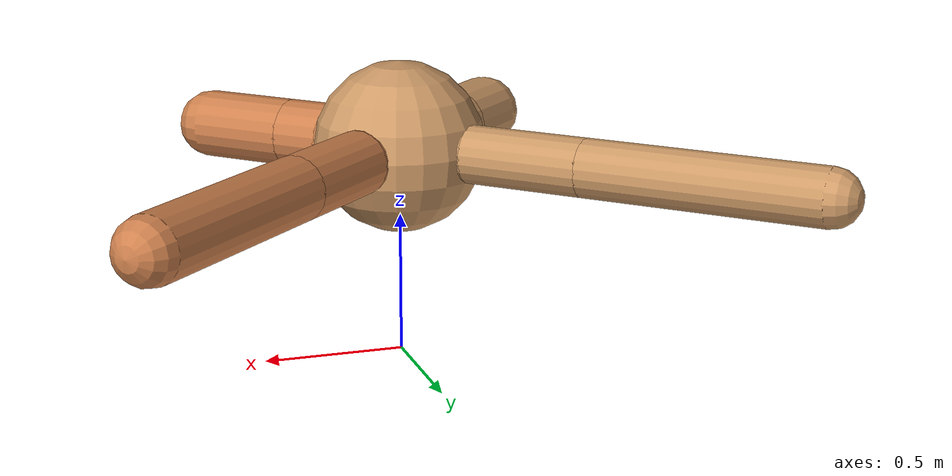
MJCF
<?xml version="1.0" ?>
<mujoco model="ant">

	<compiler angle="degree" coordinate="local" inertiafromgeom="true"/>

	<option integrator="RK4" timestep="0.01"/>

	<custom>

		<numeric data="0.0 0.0 0.55 1.0 0.0 0.0 0.0 0.0 1.0 0.0 -1.0 0.0 -1.0 0.0 1.0" name="init_qpos"/>

	</custom>

	<default>

		<joint armature="1" damping="1" limited="true"/>

		<geom conaffinity="0" condim="3" density="5.0" friction="1.5 0.1 0.1" margin="0.01" rgba="0.8 0.6 0.4 1"/>

	</default>

	<worldbody>

		<body name="torso" pos="0 0 0.75">

			<geom name="torso_geom" pos="0 0 0" size="0.30265412161587" type="sphere"/>

			<!--joint armature="0" damping="0" limited="false" margin="0.01" name="root" pos="0 0 0" type="free"/-->

			<body name="front_left_leg" pos="0 0 0">

				<geom fromto="0 0 0 0.2 0.2 0" name="aux_1_geom" size="0.11176989946032738" type="capsule" rgba=".8 .5 .3 1"/>

				<body name="aux_1" pos="0.2 0.2 0">

					<joint axis="0 0 1" name="hip_1" pos="0.0 0.0 0.0" range="-40 40" type="hinge"/>

					<geom fromto="0 0 0 0.28164297016704903 0.28164297016704903 0" name="left_leg_geom" size="0.11176989946032738" type="capsule" rgba=".8 .5 .3 1"/>

					<body pos="0.28164297016704903 0.28164297016704903 0" name="front_left_foot">

						<joint axis="-1 1 0" name="ankle_1" pos="0.0 0.0 0.0" range="30 100" type="hinge"/>

						<geom fromto="0 0 0 0.5632859403340981 0.5632859403340981 0" name="left_ankle_geom" size="0.11176989946032738" type="capsule" rgba=".8 .5 .3 1"/>

					</body>

				</body>

			</body>

			<body name="front_right_leg" pos="0 0 0">

				<geom fromto="0 0 0 -0.2 0.2 0" name="aux_2_geom" size="0.1024242380358885" type="capsule"/>

				<body name="aux_2" pos="-0.2 0.2 0">

					<joint axis="0 0 1" name="hip_2" pos="0.0 0.0 0.0" range="-40 40" type="hinge"/>

					<geom fromto="0 0 0 -0.3040024222140642 0.3040024222140642 0" name="right_leg_geom" size="0.1024242380358885" type="capsule"/>

					<body pos="-0.3040024222140642 0.3040024222140642 0" name="front_right_foot">

						<joint axis="1 1 0" name="ankle_2" pos="0.0 0.0 0.0" range="-100 -30" type="hinge"/>

						<geom fromto="0 0 0 -0.6080048444281284 0.6080048444281284 0" name="right_ankle_geom" size="0.1024242380358885" type="capsule"/>

					</body>

				</body>

			</body>

			<body name="left_back_leg" pos="0 0 0">

				<geom fromto="0 0 0 -0.2 -0.2 0" name="aux_3_geom" size="0.12873283902988497" type="capsule"/>

				<body name="aux_3" pos="-0.2 -0.2 0">

					<joint axis="0 0 1" name="hip_3" pos="0.0 0.0 0.0" range="-40 40" type="hinge"/>

					<geom fromto="0 0 0 -0.08592197086088345 -0.08592197086088345 0" name="back_leg_geom" size="0.12873283902988497" type="capsule"/>

					<body pos="-0.08592197086088345 -0.08592197086088345 0" name="left_back_foot">

						<joint axis="-1 1 0" name="ankle_3" pos="0.0 0.0 0.0" range="-100 -30" type="hinge"/>

						<geom fromto="0 0 0 -0.1718439417217669 -0.1718439417217669 0" name="third_ankle_geom" size="0.12873283902988497" type="capsule"/>

					</body>

				</body>

			</body>

			<body name="right_back_leg" pos="0 0 0">

				<geom fromto="0 0 0 0.2 -0.2 0" name="aux_4_geom" size="0.12132779196948824" type="capsule" rgba=".8 .5 .3 1"/>

				<body name="aux_4" pos="0.2 -0.2 0">

					<joint axis="0 0 1" name="hip_4" pos="0.0 0.0 0.0" range="-40 40" type="hinge"/>

					<geom fromto="0 0 0 0.11920751273970864 -0.11920751273970864 0" name="rightback_leg_geom" size="0.12132779196948824" type="capsule" rgba=".8 .5 .3 1"/>

					<body pos="0.11920751273970864 -0.11920751273970864 0" name="right_back_foot">

						<joint axis="1 1 0" name="ankle_4" pos="0.0 0.0 0.0" range="30 100" type="hinge"/>

						<geom fromto="0 0 0 0.2384150254794173 -0.2384150254794173 0" name="fourth_ankle_geom" size="0.12132779196948824" type="capsule" rgba=".8 .5 .3 1"/>

					</body>

				</body>

			</body>

		</body>

	</worldbody>

	<actuator>

		<motor ctrllimited="true" ctrlrange="-1.0 1.0" joint="hip_4" gear="150"/>

		<motor ctrllimited="true" ctrlrange="-1.0 1.0" joint="ankle_4" gear="150"/>

		<motor ctrllimited="true" ctrlrange="-1.0 1.0" joint="hip_1" gear="150"/>

		<motor ctrllimited="true" ctrlrange="-1.0 1.0" joint="ankle_1" gear="150"/>

		<motor ctrllimited="true" ctrlrange="-1.0 1.0" joint="hip_2" gear="150"/>

		<motor ctrllimited="true" ctrlrange="-1.0 1.0" joint="ankle_2" gear="150"/>

		<motor ctrllimited="true" ctrlrange="-1.0 1.0" joint="hip_3" gear="150"/>

		<motor ctrllimited="true" ctrlrange="-1.0 1.0" joint="ankle_3" gear="150"/>

	</actuator>

</mujoco>
